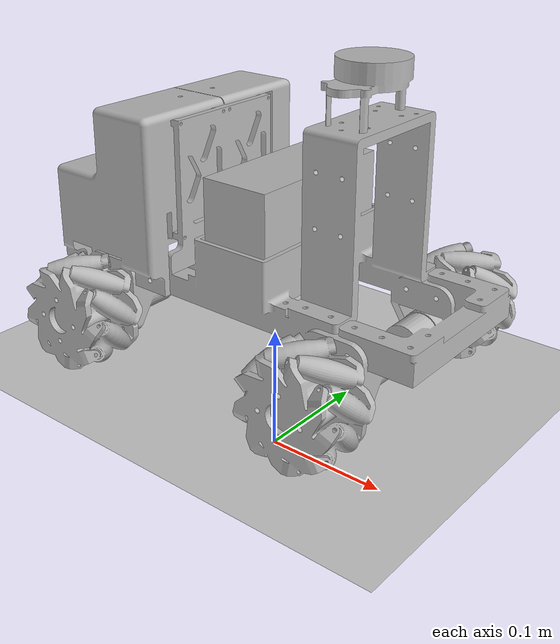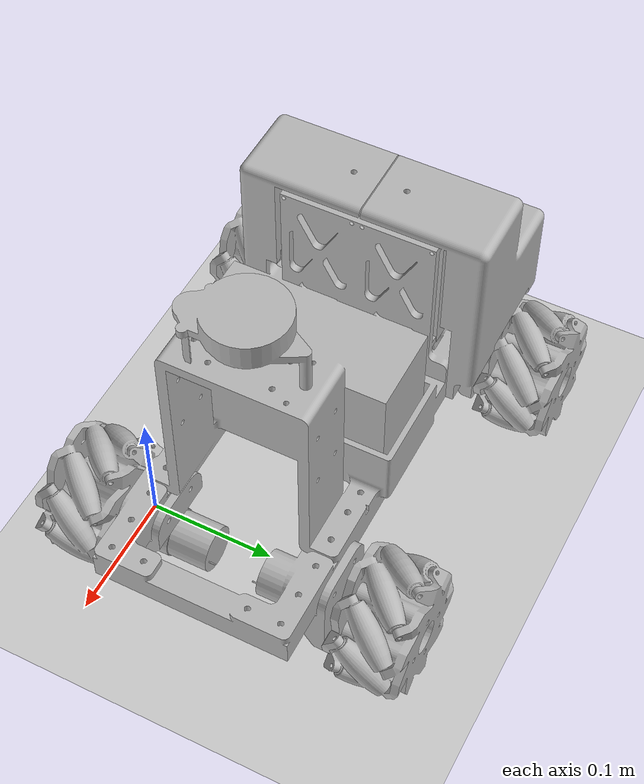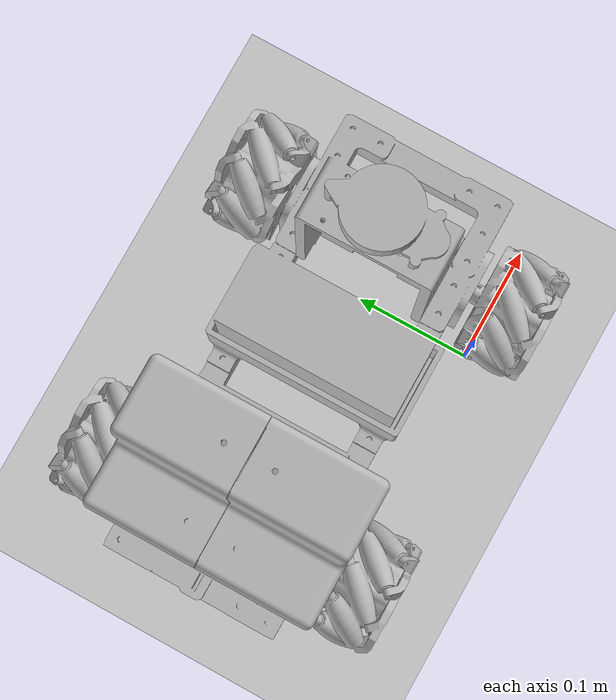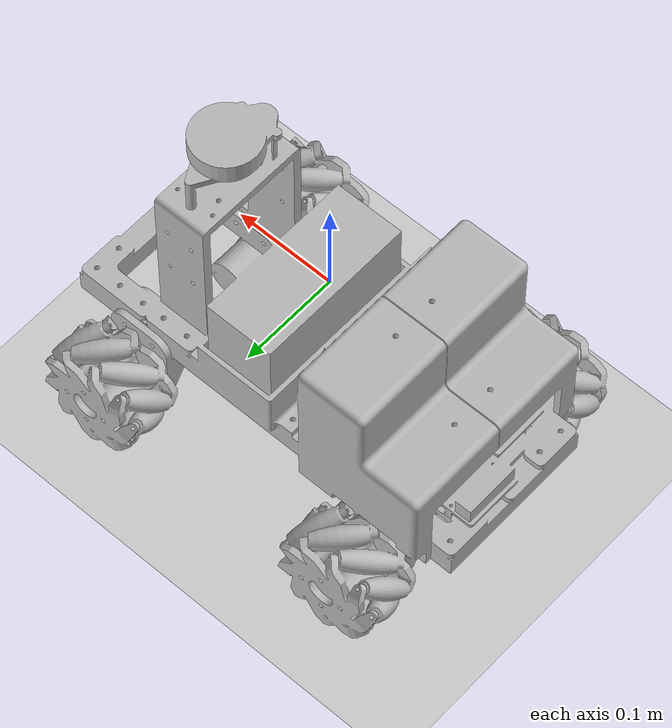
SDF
<?xml version="1.0" ?>
<sdf version="1.6">
  <world name="example_world">

    <physics name="1ms" type="ignored">
      <max_step_size>0.001</max_step_size>
      <real_time_factor>1.0</real_time_factor>
    </physics>
    <plugin
      filename="ignition-gazebo-physics-system"
      name="ignition::gazebo::systems::Physics">
    </plugin>
    <plugin
      filename="libignition-gazebo-sensors-system.so"
      name="ignition::gazebo::systems::Sensors">
      <render_engine>ogre2</render_engine>
    </plugin>
    <plugin
      filename="ignition-gazebo-user-commands-system"
      name="ignition::gazebo::systems::UserCommands">
    </plugin>
    <plugin
      filename="ignition-gazebo-scene-broadcaster-system"
      name="ignition::gazebo::systems::SceneBroadcaster">
    </plugin>

    <gui fullscreen="0">
      <!-- 3D scene -->
      <plugin filename="MinimalScene" name="3D View">
        <ignition-gui>
          <title>3D View</title>
          <property type="bool" key="showTitleBar">false</property>
          <property type="string" key="state">docked</property>
        </ignition-gui>

        <engine>ogre2</engine>
        <scene>scene</scene>
        <ambient_light>0.4 0.4 0.4</ambient_light>
        <background_color>0.8 0.8 0.8</background_color>
        <camera_pose>-6 0 6 0 0.5 0</camera_pose>
      </plugin>

      <!-- Plugins that add functionality to the scene -->
      <plugin filename="EntityContextMenuPlugin" name="Entity context menu">
        <ignition-gui>
          <property key="state" type="string">floating</property>
          <property key="width" type="double">5</property>
          <property key="height" type="double">5</property>
          <property key="showTitleBar" type="bool">false</property>
        </ignition-gui>
      </plugin>
      <plugin filename="GzSceneManager" name="Scene Manager">
        <ignition-gui>
          <property key="resizable" type="bool">false</property>
          <property key="width" type="double">5</property>
          <property key="height" type="double">5</property>
          <property key="state" type="string">floating</property>
          <property key="showTitleBar" type="bool">false</property>
        </ignition-gui>
      </plugin>
      <plugin filename="InteractiveViewControl" name="Interactive view control">
        <ignition-gui>
          <property key="resizable" type="bool">false</property>
          <property key="width" type="double">5</property>
          <property key="height" type="double">5</property>
          <property key="state" type="string">floating</property>
          <property key="showTitleBar" type="bool">false</property>
        </ignition-gui>
      </plugin>
      <plugin filename="CameraTracking" name="Camera Tracking">
        <ignition-gui>
          <property key="resizable" type="bool">false</property>
          <property key="width" type="double">5</property>
          <property key="height" type="double">5</property>
          <property key="state" type="string">floating</property>
          <property key="showTitleBar" type="bool">false</property>
        </ignition-gui>
      </plugin>
      <!-- World control -->
      <plugin filename="WorldControl" name="World control">
        <ignition-gui>
          <title>World control</title>
          <property type="bool" key="showTitleBar">false</property>
          <property type="bool" key="resizable">false</property>
          <property type="double" key="height">72</property>
          <property type="double" key="width">121</property>
          <property type="double" key="z">1</property>

          <property type="string" key="state">floating</property>
          <anchors target="3D View">
            <line own="left" target="left"/>
            <line own="bottom" target="bottom"/>
          </anchors>
        </ignition-gui>

        <play_pause>true</play_pause>
        <step>true</step>
        <start_paused>false</start_paused>
        <use_event>true</use_event>
      </plugin>

      <!-- World statistics -->
      <plugin filename="WorldStats" name="World stats">
        <ignition-gui>
          <title>World stats</title>
          <property type="bool" key="showTitleBar">false</property>
          <property type="bool" key="resizable">false</property>
          <property type="double" key="height">110</property>
          <property type="double" key="width">290</property>
          <property type="double" key="z">1</property>

          <property type="string" key="state">floating</property>
          <anchors target="3D View">
            <line own="right" target="right"/>
            <line own="bottom" target="bottom"/>
          </anchors>
        </ignition-gui>

        <sim_time>true</sim_time>
        <real_time>true</real_time>
        <real_time_factor>true</real_time_factor>
        <iterations>true</iterations>
      </plugin>

      <plugin
        filename="VisualizeLidar"
        name="Visualize Lidar">
      </plugin>

      <!-- Inspector -->
      <plugin filename="ComponentInspector" name="Component inspector">
        <ignition-gui>
          <property type="string" key="state">docked</property>
        </ignition-gui>
      </plugin>

      <!-- Entity tree -->
      <plugin filename="EntityTree" name="Entity tree">
        <ignition-gui>
          <property type="string" key="state">docked</property>
        </ignition-gui>
      </plugin>
  </gui>

     <light type="directional" name="sun">
      <cast_shadows>false</cast_shadows>
      <pose>0 0 10 0 0 0</pose>
      <diffuse>1 1 1 1</diffuse>
      <specular>0.5 0.5 0.5 1</specular>
      <attenuation>
        <range>1000</range>
        <constant>0.9</constant>
        <linear>0.01</linear>
        <quadratic>0.001</quadratic>
      </attenuation>
      <direction>-0.5 0.1 -0.9</direction>
    </light>

    <model name="ground_plane">
      <static>true</static>
      <link name="link">
        <collision name="collision">
          <geometry>
            <plane>
              <normal>0 0 1</normal>
              <size>100 100</size>
            </plane>
          </geometry>
          <surface>
            <friction>
              <ode>
                <mu>50</mu>
              </ode>
            </friction>
          </surface>
        </collision>
        <visual name="visual">
          <geometry>
            <plane>
              <normal>0 0 1</normal>
              <size>100 100</size>
            </plane>
          </geometry>
          <material>
            <ambient>0.8 0.8 0.8 1</ambient>
            <diffuse>0.8 0.8 0.8 1</diffuse>
            <specular>0.8 0.8 0.8 1</specular>
          </material>
        </visual>
      </link>
    </model>

    <include>
      <name>mecanum_bot</name>
      <uri>model://mecanum_bot</uri>
      <pose>0.1 0.1 0.1 0 0 0</pose>
      <static>false</static>
    </include>

  </world>
</sdf>

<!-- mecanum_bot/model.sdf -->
<sdf version="1.7">
  <model name="mecanum_bot">
    <pose>0 0 0 0 -0 0</pose>

    <link name="base_link">
      <self_collide>false</self_collide>
      <inertial>
        <pose>-0.1860000044107437 0.0 0.04050000384449959 0.0 0.0 0.0</pose>
        <inertia>
          <ixx>0.05</ixx>
          <ixy>0</ixy>
          <ixz>0</ixz>
          <iyy>0.05</iyy>
          <iyz>0</iyz>
          <izz>0.05</izz>
        </inertia>
        <mass>5</mass>
      </inertial>
      <collision name ="Cube">
        <pose>-0.1860000044107437 0.0 0.04050000384449959 0.0 0.0 0.0</pose>
        <geometry>
          <box>
            <size>0.39200000195503235 0.1939999908208847 0.219000001168251038</size>
          </box>
        </geometry>
      </collision>
      <visual name="base_visual">
        <pose>0 0 0 0 -0 0</pose>
        <geometry>
          <mesh>
            <uri>model://mecanum_bot/meshes/mecanum_bot_chassis.obj</uri>
            <scale>1 1 1</scale>
          </mesh>
        </geometry>
      </visual>
    </link>

    <link name="front_left_wheel">
      <self_collide>false</self_collide>
      <pose>-0.060 0.116 -0.041 0 0 0</pose>
      <inertial>
        <mass>0.2</mass>
        <inertia>
          <ixx>0.0001</ixx>
          <ixy>0</ixy>
          <ixz>0</ixz>
          <iyy>0.0001</iyy>
          <iyz>0</iyz>
          <izz>0.0001</izz>
        </inertia>
      </inertial>
      <visual name="front_left_wheel_visual">
        <pose>0 0 0 0 -0 0</pose>
        <geometry>
          <mesh>
            <uri>model://mecanum_bot/meshes/mecanum_bot_wheel.obj</uri>
            <scale>1 1 1</scale>
          </mesh>
        </geometry>
      </visual>
      <collision name="front_left_wheel_collision">
        <geometry>
          <sphere>
            <radius>0.05</radius>
          </sphere>
        </geometry>
        <surface>
          <friction>
            <ode>
              <mu>10.0</mu>
              <mu2>0.0</mu2>
              <slip1>0.0</slip1>
              <slip2>0.0</slip2>
              <fdir1 ignition:expressed_in="base_link">1 -1 0</fdir1>
            </ode>
          </friction>
          <contact>
            <ode>
              <soft_cfm>0</soft_cfm>
              <soft_erp>0.2</soft_erp>
              <kp>1e+5</kp>
              <kd>1</kd>
              <max_vel>0.01</max_vel>
              <min_depth>0.0001</min_depth>
            </ode>
          </contact>
        </surface>
      </collision>
    </link>

    <link name="rear_left_wheel">
      <self_collide>false</self_collide>
      <pose>-0.310 0.116 -0.041 0 0 0</pose>
      <inertial>
        <mass>0.2</mass>
        <inertia>
          <ixx>0.0001</ixx>
          <ixy>0</ixy>
          <ixz>0</ixz>
          <iyy>0.0001</iyy>
          <iyz>0</iyz>
          <izz>0.0001</izz>
        </inertia>
      </inertial>
      <visual name="rear_left_wheel_visual">
        <pose>0 0 0 0 -0 0</pose>
        <geometry>
          <mesh>
            <uri>model://mecanum_bot/meshes/mecanum_bot_wheel.obj</uri>
            <scale>1 1 1</scale>
          </mesh>
        </geometry>
      </visual>
      <collision name="rear_left_wheel_collision">
        <geometry>
          <sphere>
            <radius>0.05</radius>
          </sphere>
        </geometry>
        <surface>
          <friction>
            <ode>
              <mu>10.0</mu>
              <mu2>0.0</mu2>
              <slip1>0.0</slip1>
              <slip2>0.0</slip2>
              <fdir1 ignition:expressed_in="base_link">1 1 0</fdir1>
            </ode>
          </friction>
          <contact>
            <ode>
              <soft_cfm>0</soft_cfm>
              <soft_erp>0.2</soft_erp>
              <kp>1e+5</kp>
              <kd>1</kd>
              <max_vel>0.01</max_vel>
              <min_depth>0.0001</min_depth>
            </ode>
          </contact>
        </surface>
      </collision>
    </link>

    <link name="front_right_wheel">
      <self_collide>false</self_collide>
      <pose>-0.060 -0.116 -0.041 0 0 -3.14</pose>
      <inertial>
        <mass>0.2</mass>
        <inertia>
          <ixx>0.0001</ixx>
          <ixy>0</ixy>
          <ixz>0</ixz>
          <iyy>0.0001</iyy>
          <iyz>0</iyz>
          <izz>0.0001</izz>
        </inertia>
      </inertial>
      <visual name="front_right_wheel_visual">
        <pose>0 0 0 0 -0 0</pose>
        <geometry>
          <mesh>
            <uri>model://mecanum_bot/meshes/mecanum_bot_wheel.obj</uri>
            <scale>1 1 1</scale>
          </mesh>
        </geometry>
      </visual>
      <collision name="front_right_wheel_collision">
        <geometry>
          <sphere>
            <radius>0.05</radius>
          </sphere>
        </geometry>
        <surface>
          <friction>
            <ode>
              <mu>10.0</mu>
              <mu2>0.0</mu2>
              <slip1>0.0</slip1>
              <slip2>0.0</slip2>
              <fdir1 ignition:expressed_in="base_link">1 1 0</fdir1>
            </ode>
          </friction>
          <contact>
            <ode>
              <soft_cfm>0</soft_cfm>
              <soft_erp>0.2</soft_erp>
              <kp>1e+5</kp>
              <kd>1</kd>
              <max_vel>0.01</max_vel>
              <min_depth>0.0001</min_depth>
            </ode>
          </contact>
        </surface>
      </collision>
    </link>

    <link name="rear_right_wheel">
      <self_collide>false</self_collide>
      <pose>-0.310 -0.116 -0.041 0 0 -3.14</pose>
      <inertial>
        <mass>0.2</mass>
        <inertia>
          <ixx>0.0001</ixx>
          <ixy>0</ixy>
          <ixz>0</ixz>
          <iyy>0.0001</iyy>
          <iyz>0</iyz>
          <izz>0.0001</izz>
        </inertia>
      </inertial>
      <visual name="rear_right_wheel_visual">
        <pose>0 0 0 0 -0 0</pose>
        <geometry>
          <mesh>
            <uri>model://mecanum_bot/meshes/mecanum_bot_wheel.obj</uri>
            <scale>1 1 1</scale>
          </mesh>
        </geometry>
      </visual>
      <collision name="rear_right_wheel_collision">
        <geometry>
          <sphere>
            <radius>0.05</radius>
          </sphere>
        </geometry>
        <surface>
          <friction>
            <ode>
              <mu>10.0</mu>
              <mu2>0.0</mu2>
              <slip1>0.0</slip1>
              <slip2>0.0</slip2>
              <fdir1 ignition:expressed_in="base_link">1 -1 0</fdir1>
            </ode>
          </friction>
          <contact>
            <ode>
              <soft_cfm>0</soft_cfm>
              <soft_erp>0.2</soft_erp>
              <kp>1e+5</kp>
              <kd>1</kd>
              <max_vel>0.01</max_vel>
              <min_depth>0.0001</min_depth>
            </ode>
          </contact>
        </surface>
      </collision>
    </link>

    <link name="base_scan">
      <inertial>
        <pose>-0.085 0. 0.1924 0 0 0</pose>
        <inertia>
          <ixx>0.001</ixx>
          <ixy>0.000</ixy>
          <ixz>0.000</ixz>
          <iyy>0.001</iyy>
          <iyz>0.000</iyz>
          <izz>0.001</izz>
        </inertia>
        <mass>0.125</mass>
      </inertial>
      <collision name="lidar_sensor_collision">
        <pose>-0.085 -0.0036665257066488266 0.17515000043 0 0 0</pose>
        <geometry>
          <box>
            <size>0.06041127070784569 0.09593304991722107 0.0502999983727932</size>
          </box>
        </geometry>
      </collision>
      <visual name="lidar_sensor_visual">
        <pose>-0.085 0. 0.1924 0 0 0</pose>
        <geometry>
          <mesh>
            <uri>model://mecanum_bot/meshes/ydlidar_x2l.obj</uri>
            <scale>1.0 1.0 1.0</scale>
          </mesh>
        </geometry>
      </visual>
      <sensor name="ydlidar_x2l" type="gpu_lidar">
        <always_on>true</always_on>
        <pose>-0.085 0. 0.1924 0 0 0</pose>
        <topic>scan</topic>
        <update_rate>8</update_rate>
        <visualize>true</visualize>
        <lidar>
          <scan>
            <horizontal>
              <samples>360</samples>
              <resolution>1.000000</resolution>
              <min_angle>-3.14</min_angle>
              <max_angle>3.14</max_angle>
            </horizontal>
          </scan>
          <range>
            <min>0.08</min>
            <max>12.0</max>
            <resolution>0.015000</resolution>
          </range>
          <noise>
            <type>gaussian</type>
            <mean>0.0</mean>
            <stddev>0.01</stddev>
          </noise>
        </lidar>
      </sensor>
    </link>

    <joint name="front_left_wheel_joint" type="revolute">
      <parent>base_link</parent>
      <child>front_left_wheel</child>
      <axis>
        <xyz>0 1 0</xyz>
        <limit>
          <lower>-1.79769e+308</lower>
          <upper>1.79769e+308</upper>
        </limit>
      </axis>
    </joint>

    <joint name="rear_left_wheel_joint" type="revolute">
      <parent>base_link</parent>
      <child>rear_left_wheel</child>
      <axis>
        <xyz>0 1 0</xyz>
        <limit>
          <lower>-1.79769e+308</lower>
          <upper>1.79769e+308</upper>
        </limit>
      </axis>
    </joint>

    <joint name="front_right_wheel_joint" type="revolute">
      <parent>base_link</parent>
      <child>front_right_wheel</child>
      <axis>
        <xyz>0 -1 0</xyz>
        <limit>
          <lower>-1.79769e+308</lower>
          <upper>1.79769e+308</upper>
        </limit>
      </axis>
    </joint>

    <joint name="rear_right_wheel_joint" type="revolute">
      <parent>base_link</parent>
      <child>rear_right_wheel</child>
      <axis>
        <xyz>0 -1 0</xyz>
        <limit>
          <lower>-1.79769e+308</lower>
          <upper>1.79769e+308</upper>
        </limit>
      </axis>
    </joint>

    <joint name="base_scan_joint" type="fixed">
      <parent>base_link</parent>
      <child>base_scan</child>
    </joint>

    <plugin
      filename="ignition-gazebo-mecanum-drive-system"
      name="ignition::gazebo::systems::MecanumDrive">
      <front_left_joint>front_left_wheel_joint</front_left_joint>
      <front_right_joint>front_right_wheel_joint</front_right_joint>
      <back_left_joint>rear_left_wheel_joint</back_left_joint>
      <back_right_joint>rear_right_wheel_joint</back_right_joint>
      <wheel_separation>0.232</wheel_separation>
      <wheelbase>0.25</wheelbase>
      <wheel_radius>0.045</wheel_radius>
      <min_acceleration>-0.5</min_acceleration>
      <max_acceleration>0.5</max_acceleration>
    </plugin>

  </model>
</sdf>
